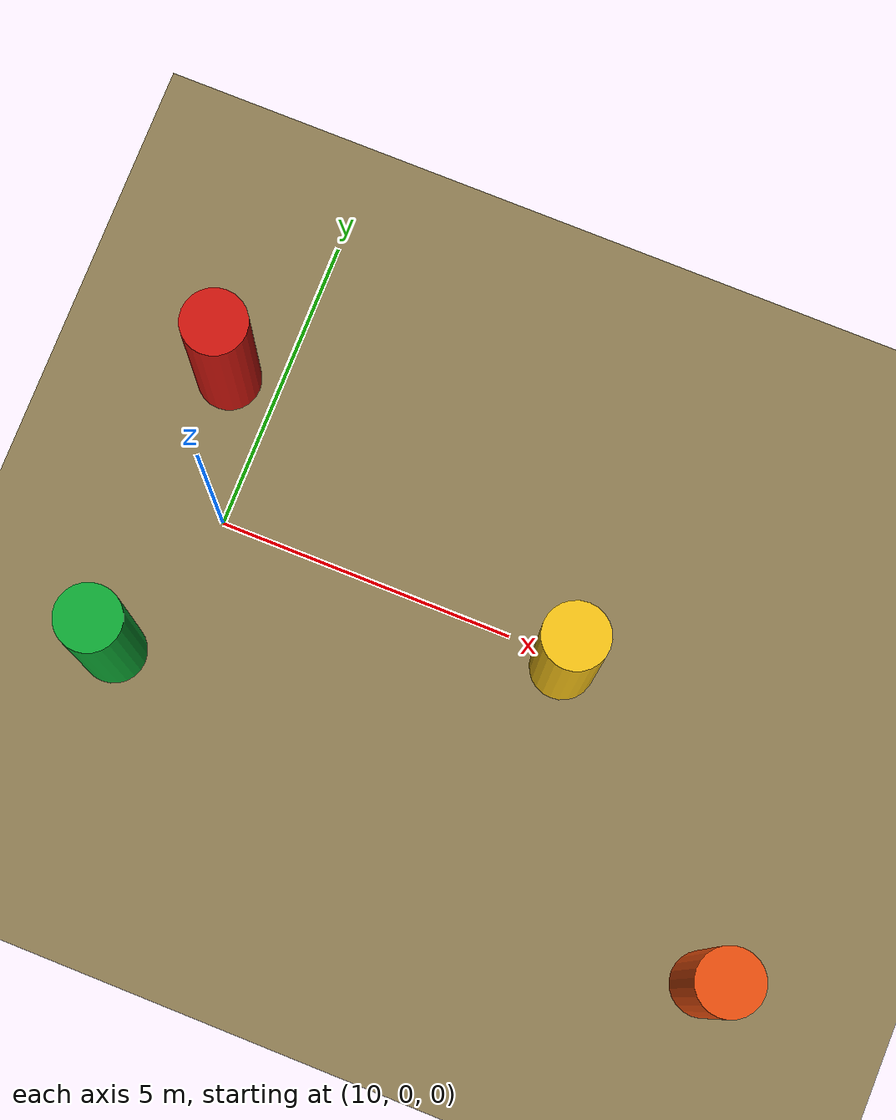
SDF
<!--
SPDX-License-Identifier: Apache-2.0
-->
<sdf version="1.10">
 <world name="shallow_surface">
  <policies><include_gui_default_plugins>false</include_gui_default_plugins></policies>
  <physics name="default" type="ignored">
   <max_step_size>.005</max_step_size>
   <real_time_factor>1</real_time_factor>
  </physics>
  <plugin filename="gz-sim-physics-system" name="gz::sim::systems::Physics"/>
  <plugin filename="gz-sim-user-commands-system" name="gz::sim::systems::UserCommands"/>
  <plugin filename="gz-sim-scene-broadcaster-system" name="gz::sim::systems::SceneBroadcaster"/>
  <plugin filename="gz-sim-imu-system" name="gz::sim::systems::Imu"/>
  <plugin filename="gz-sim-sensors-system" name="gz::sim::systems::Sensors">
   <render_engine>ogre2</render_engine>
  </plugin>
  <plugin filename="posim_underwater" name="posim::Underwater">
   <session_nonce>shallow_surface</session_nonce>
  </plugin>
  <light name="sun" type="directional">
   <diffuse>1 1 .95 1</diffuse>
   <specular>.3 .3 .3 1</specular>
   <direction>.3 .2 -1</direction>
  </light>
  <scene><grid>false</grid><ambient>.35 .35 .4 1</ambient><background>.55 .72 .85 1</background></scene>
  <spherical_coordinates>
   <surface_model>EARTH_WGS84</surface_model>
   <latitude_deg>35.074823</latitude_deg>
   <longitude_deg>129.084798</longitude_deg>
   <elevation>0</elevation>
   <heading_deg>0</heading_deg>
  </spherical_coordinates>
  <model name="seabed">
   <static>true</static>
   <pose>0 0 -4.1 0 0 0</pose>
   <link name="link">
    <collision name="seabed"><geometry><box><size>200 200 .2</size></box></geometry></collision>
    <visual name="seabed">
     <geometry><box><size>200 200 .2</size></box></geometry>
     <material>
      <ambient>.55 .48 .32 1</ambient>
      <diffuse>.55 .48 .32 1</diffuse>
      <pbr><metal><roughness>.75</roughness><metalness>0</metalness></metal></pbr>
     </material>
    </visual>
   </link>
  </model>
  <model name="port_buoy">
   <static>true</static>
   <pose>9 2.5 .75 0 0 0</pose>
   <link name="link">
    <collision name="port_buoy">
     <geometry><cylinder><radius>.55</radius><length>3.5</length></cylinder></geometry>
    </collision>
    <visual name="port_buoy">
     <geometry><cylinder><radius>.55</radius><length>3.5</length></cylinder></geometry>
     <material>
      <ambient>.8 .08 .05 1</ambient>
      <diffuse>.8 .08 .05 1</diffuse>
      <pbr><metal><roughness>.75</roughness><metalness>0</metalness></metal></pbr>
     </material>
    </visual>
   </link>
  </model>
  <model name="starboard_buoy">
   <static>true</static>
   <pose>9 -2.5 .75 0 0 0</pose>
   <link name="link">
    <collision name="starboard_buoy">
     <geometry><cylinder><radius>.55</radius><length>3.5</length></cylinder></geometry>
    </collision>
    <visual name="starboard_buoy">
     <geometry><cylinder><radius>.55</radius><length>3.5</length></cylinder></geometry>
     <material>
      <ambient>.05 .65 .2 1</ambient>
      <diffuse>.05 .65 .2 1</diffuse>
      <pbr><metal><roughness>.75</roughness><metalness>0</metalness></metal></pbr>
     </material>
    </visual>
   </link>
  </model>
  <model name="channel_buoy">
   <static>true</static>
   <pose>16 0 .75 0 0 0</pose>
   <link name="link">
    <collision name="channel_buoy">
     <geometry><cylinder><radius>.55</radius><length>3.5</length></cylinder></geometry>
    </collision>
    <visual name="channel_buoy">
     <geometry><cylinder><radius>.55</radius><length>3.5</length></cylinder></geometry>
     <material>
      <ambient>.95 .75 .08 1</ambient>
      <diffuse>.95 .75 .08 1</diffuse>
      <pbr><metal><roughness>.75</roughness><metalness>0</metalness></metal></pbr>
     </material>
    </visual>
   </link>
  </model>
  <model name="outer_buoy">
   <static>true</static>
   <pose>20 -4 .75 0 0 0</pose>
   <link name="link">
    <collision name="outer_buoy">
     <geometry><cylinder><radius>.55</radius><length>3.5</length></cylinder></geometry>
    </collision>
    <visual name="outer_buoy">
     <geometry><cylinder><radius>.55</radius><length>3.5</length></cylinder></geometry>
     <material>
      <ambient>.9 .3 .05 1</ambient>
      <diffuse>.9 .3 .05 1</diffuse>
      <pbr><metal><roughness>.75</roughness><metalness>0</metalness></metal></pbr>
     </material>
    </visual>
   </link>
  </model>
 </world>
</sdf>
